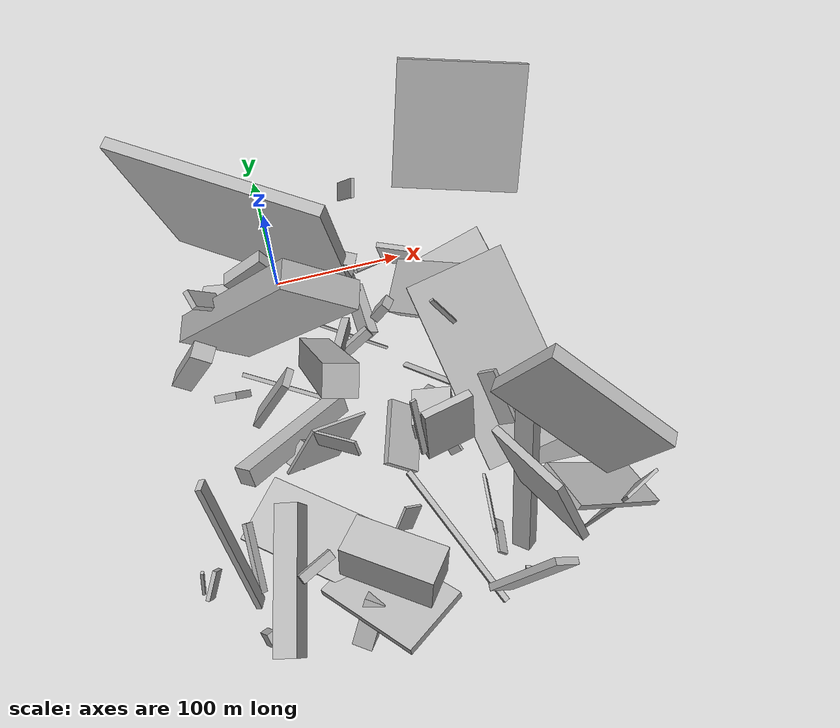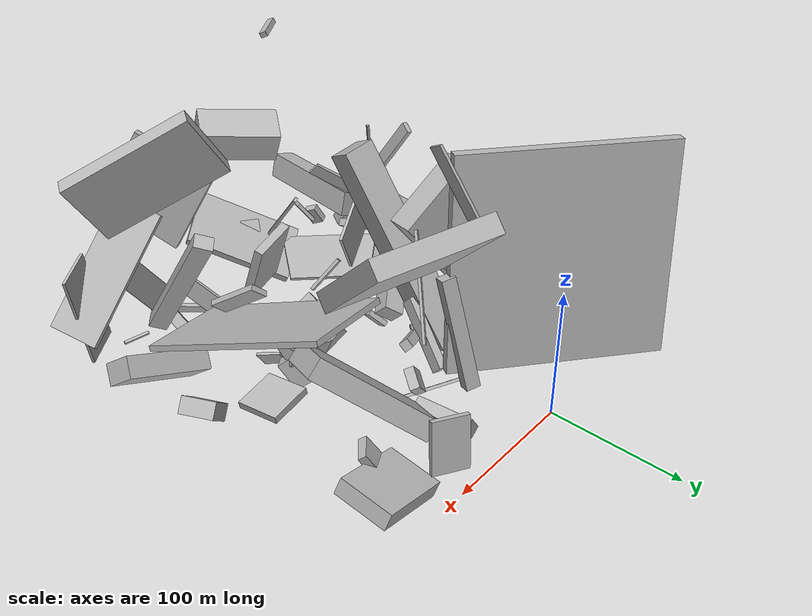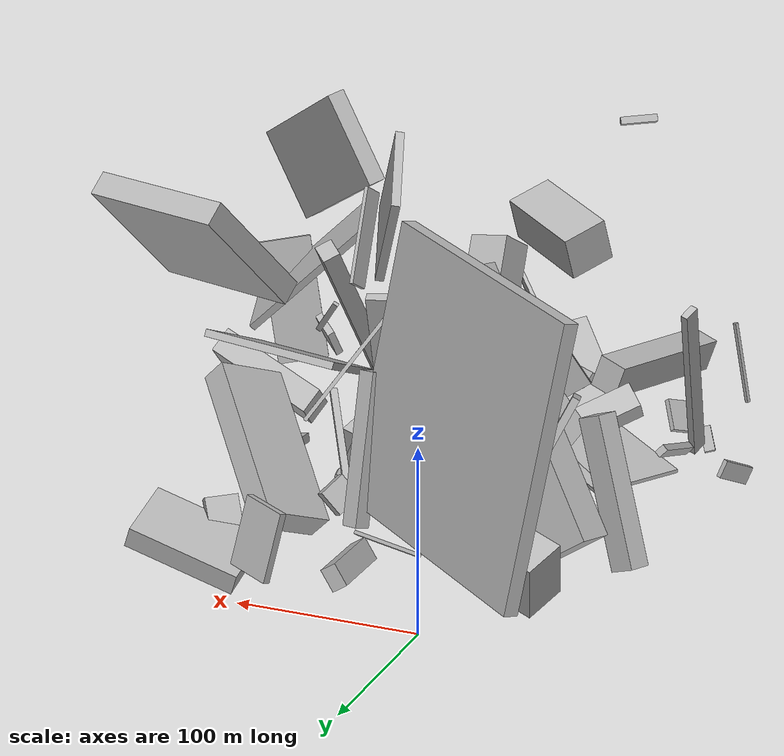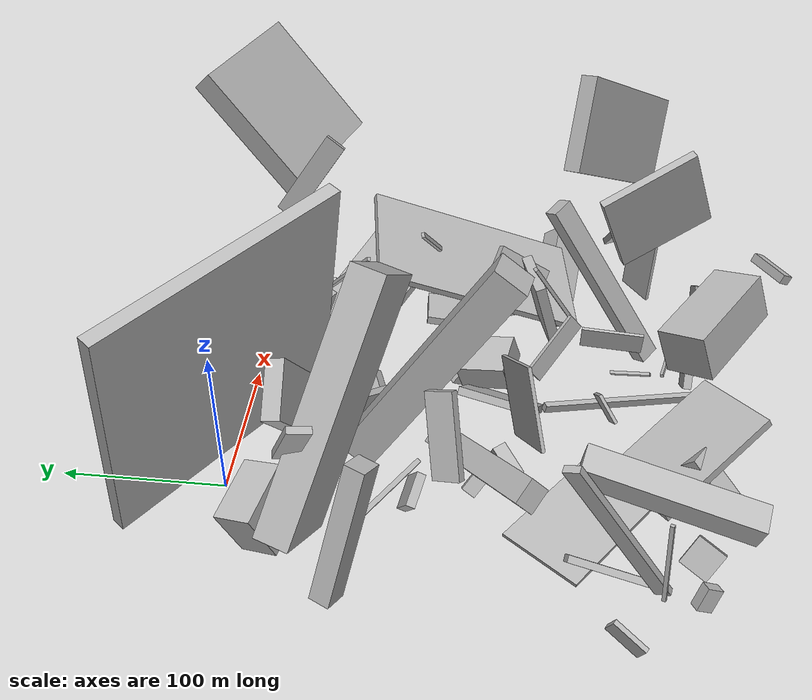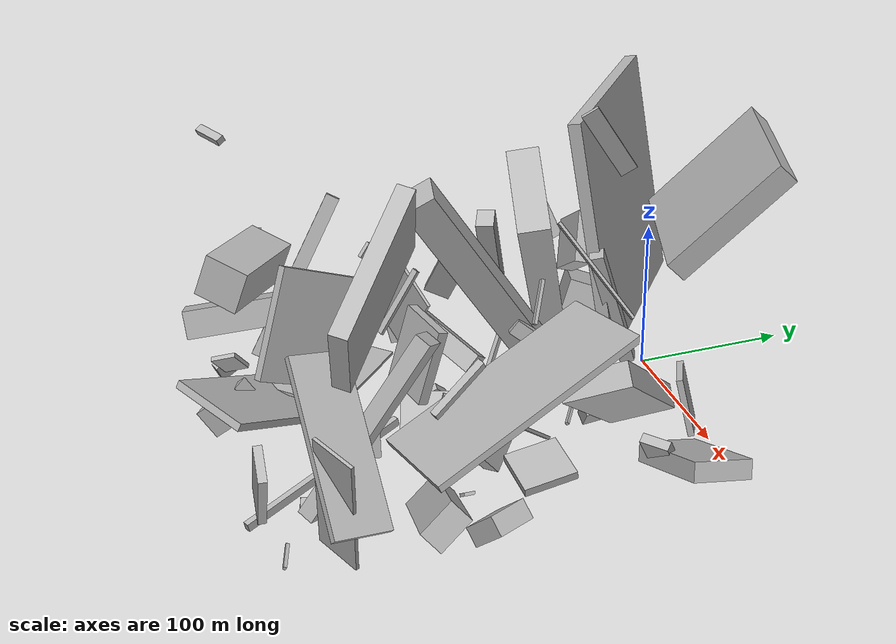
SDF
<sdf version="1.6">
 <world name="default">
  <model name="building_1">
   <static>0</static>
   <pose>14.167553418681498 -128.4385211129559 86.4717740284772 1.0269178768683063 -0.1665577892159041 2.955657467043656</pose>
   <link name="link">
    <gravity>0</gravity>
    <pose>0 0 10.5 0 0 0</pose>
    <collision name="collision"><geometry><box><size>22 150 21</size></box></geometry></collision>
    <visual name="visual">
     <cast_shadows>0</cast_shadows>
     <geometry><box><size>22 150 21</size></box></geometry>
     <material>
      <script>
       <uri>model://HANNAS_wall/materials/scripts</uri>
       <uri>model://HANNAS_wall/materials/textures</uri>
       <name>vrc/HANNAS_wall</name>
      </script>
     </material>
    </visual>
   </link>
  </model>
  <model name="building_5">
   <static>0</static>
   <pose>-17.961056952276753 -17.207184556817623 114.35984246697359 0.2839976143816802 -1.3792696738702126 -2.489850577921641</pose>
   <link name="link">
    <gravity>0</gravity>
    <pose>0 0 4.0 0 0 0</pose>
    <collision name="collision"><geometry><box><size>150 150 8</size></box></geometry></collision>
    <visual name="visual">
     <cast_shadows>0</cast_shadows>
     <geometry><box><size>150 150 8</size></box></geometry>
     <material>
      <script>
       <uri>model://HANNAS_wall/materials/scripts</uri>
       <uri>model://HANNAS_wall/materials/textures</uri>
       <name>vrc/HANNAS_wall</name>
      </script>
     </material>
    </visual>
   </link>
  </model>
  <model name="building_23">
   <static>0</static>
   <pose>115.91938954572889 -282.1856681553513 43.727112781264076 1.5741132704764333 -0.6018587251410455 3.0609200199020803</pose>
   <link name="link">
    <gravity>0</gravity>
    <pose>0 0 2.5 0 0 0</pose>
    <collision name="collision"><geometry><box><size>21 65 5</size></box></geometry></collision>
    <visual name="visual">
     <cast_shadows>0</cast_shadows>
     <geometry><box><size>21 65 5</size></box></geometry>
     <material>
      <script>
       <uri>model://HANNAS_wall/materials/scripts</uri>
       <uri>model://HANNAS_wall/materials/textures</uri>
       <name>vrc/HANNAS_wall</name>
      </script>
     </material>
    </visual>
   </link>
  </model>
  <model name="building_29">
   <static>0</static>
   <pose>161.65502159185326 -229.4057410338438 91.71723709342442 -1.2527995280689277 -0.765357492756513 -3.090254694429837</pose>
   <link name="link">
    <gravity>0</gravity>
    <pose>0 0 17.0 0 0 0</pose>
    <collision name="collision"><geometry><box><size>96 4 34</size></box></geometry></collision>
    <visual name="visual">
     <cast_shadows>0</cast_shadows>
     <geometry><box><size>96 4 34</size></box></geometry>
     <material>
      <script>
       <uri>model://HANNAS_wall/materials/scripts</uri>
       <uri>model://HANNAS_wall/materials/textures</uri>
       <name>vrc/HANNAS_wall</name>
      </script>
     </material>
    </visual>
   </link>
  </model>
  <model name="building_31">
   <static>0</static>
   <pose>-71.12173607689023 -217.81904068819807 67.67773377378983 1.0272851538388221 -1.0304022449760055 1.7855317427410022</pose>
   <link name="link">
    <gravity>0</gravity>
    <pose>0 0 2.0 0 0 0</pose>
    <collision name="collision"><geometry><box><size>117 9 4</size></box></geometry></collision>
    <visual name="visual">
     <cast_shadows>0</cast_shadows>
     <geometry><box><size>117 9 4</size></box></geometry>
     <material>
      <script>
       <uri>model://HANNAS_wall/materials/scripts</uri>
       <uri>model://HANNAS_wall/materials/textures</uri>
       <name>vrc/HANNAS_wall</name>
      </script>
     </material>
    </visual>
   </link>
  </model>
  <model name="building_34">
   <static>0</static>
   <pose>77.00392377610508 -237.8559256962605 17.65682385530406 1.4703786863304507 1.3690345414308702 1.8783712399257677</pose>
   <link name="link">
    <gravity>0</gravity>
    <pose>0 0 2.0 0 0 0</pose>
    <collision name="collision"><geometry><box><size>5 111 4</size></box></geometry></collision>
    <visual name="visual">
     <cast_shadows>0</cast_shadows>
     <geometry><box><size>5 111 4</size></box></geometry>
     <material>
      <script>
       <uri>model://HANNAS_wall/materials/scripts</uri>
       <uri>model://HANNAS_wall/materials/textures</uri>
       <name>vrc/HANNAS_wall</name>
      </script>
     </material>
    </visual>
   </link>
  </model>
  <model name="building_38">
   <static>0</static>
   <pose>122.61260703813824 -126.76806173273553 36.624197765709035 -1.6933191804896528 0.12758014650047617 -1.5352733530291771</pose>
   <link name="link">
    <gravity>0</gravity>
    <pose>0 0 15.5 0 0 0</pose>
    <collision name="collision"><geometry><box><size>32 5 31</size></box></geometry></collision>
    <visual name="visual">
     <cast_shadows>0</cast_shadows>
     <geometry><box><size>32 5 31</size></box></geometry>
     <material>
      <script>
       <uri>model://HANNAS_wall/materials/scripts</uri>
       <uri>model://HANNAS_wall/materials/textures</uri>
       <name>vrc/HANNAS_wall</name>
      </script>
     </material>
    </visual>
   </link>
  </model>
  <model name="building_43">
   <static>0</static>
   <pose>177.01295174001393 -244.9247773489519 148.10159401469008 1.0707601082096345 -0.2146266852913278 -2.161396804426114</pose>
   <link name="link">
    <gravity>0</gravity>
    <pose>0 0 45.5 0 0 0</pose>
    <collision name="collision"><geometry><box><size>10 53 91</size></box></geometry></collision>
    <visual name="visual">
     <cast_shadows>0</cast_shadows>
     <geometry><box><size>10 53 91</size></box></geometry>
     <material>
      <script>
       <uri>model://HANNAS_wall/materials/scripts</uri>
       <uri>model://HANNAS_wall/materials/textures</uri>
       <name>vrc/HANNAS_wall</name>
      </script>
     </material>
    </visual>
   </link>
  </model>
  <model name="building_44">
   <static>0</static>
   <pose>-59.731344857448974 -195.89416044890996 34.81261046220553 1.9930609223651006 -0.6924546302940384 -0.28740478855786455</pose>
   <link name="link">
    <gravity>0</gravity>
    <pose>0 0 24.0 0 0 0</pose>
    <collision name="collision"><geometry><box><size>4 6 48</size></box></geometry></collision>
    <visual name="visual">
     <cast_shadows>0</cast_shadows>
     <geometry><box><size>4 6 48</size></box></geometry>
     <material>
      <script>
       <uri>model://HANNAS_wall/materials/scripts</uri>
       <uri>model://HANNAS_wall/materials/textures</uri>
       <name>vrc/HANNAS_wall</name>
      </script>
     </material>
    </visual>
   </link>
  </model>
  <model name="building_45">
   <static>0</static>
   <pose>120.80255049454676 -169.68069466629393 86.25298110559275 2.2484199312301363 0.7157048544326549 2.7209666175936036</pose>
   <link name="link">
    <gravity>0</gravity>
    <pose>0 0 2.0 0 0 0</pose>
    <collision name="collision"><geometry><box><size>13 39 4</size></box></geometry></collision>
    <visual name="visual">
     <cast_shadows>0</cast_shadows>
     <geometry><box><size>13 39 4</size></box></geometry>
     <material>
      <script>
       <uri>model://HANNAS_wall/materials/scripts</uri>
       <uri>model://HANNAS_wall/materials/textures</uri>
       <name>vrc/HANNAS_wall</name>
      </script>
     </material>
    </visual>
   </link>
  </model>
  <model name="building_47">
   <static>0</static>
   <pose>21.404137272646036 -125.42198294280135 34.26859883090836 1.0875869183643108 -0.612547241246844 -0.6798426465221342</pose>
   <link name="link">
    <gravity>0</gravity>
    <pose>0 0 48.0 0 0 0</pose>
    <collision name="collision"><geometry><box><size>15 13 96</size></box></geometry></collision>
    <visual name="visual">
     <cast_shadows>0</cast_shadows>
     <geometry><box><size>15 13 96</size></box></geometry>
     <material>
      <script>
       <uri>model://HANNAS_wall/materials/scripts</uri>
       <uri>model://HANNAS_wall/materials/textures</uri>
       <name>vrc/HANNAS_wall</name>
      </script>
     </material>
    </visual>
   </link>
  </model>
  <model name="building_50">
   <static>0</static>
   <pose>130.08542213150906 -218.13000926275885 71.9219222392597 -1.105740864446861 0.3581091720272023 2.3885547113511634</pose>
   <link name="link">
    <gravity>0</gravity>
    <pose>0 0 5.0 0 0 0</pose>
    <collision name="collision"><geometry><box><size>13 124 10</size></box></geometry></collision>
    <visual name="visual">
     <cast_shadows>0</cast_shadows>
     <geometry><box><size>13 124 10</size></box></geometry>
     <material>
      <script>
       <uri>model://HANNAS_wall/materials/scripts</uri>
       <uri>model://HANNAS_wall/materials/textures</uri>
       <name>vrc/HANNAS_wall</name>
      </script>
     </material>
    </visual>
   </link>
  </model>
  <model name="building_52">
   <static>0</static>
   <pose>-18.060024421739353 -80.3688731226014 89.30021594419927 -1.3232069196400766 -0.9335774583299064 -0.4986220546433001</pose>
   <link name="link">
    <gravity>0</gravity>
    <pose>0 0 10.0 0 0 0</pose>
    <collision name="collision"><geometry><box><size>150 57 20</size></box></geometry></collision>
    <visual name="visual">
     <cast_shadows>0</cast_shadows>
     <geometry><box><size>150 57 20</size></box></geometry>
     <material>
      <script>
       <uri>model://HANNAS_wall/materials/scripts</uri>
       <uri>model://HANNAS_wall/materials/textures</uri>
       <name>vrc/HANNAS_wall</name>
      </script>
     </material>
    </visual>
   </link>
  </model>
  <model name="building_57">
   <static>0</static>
   <pose>80.62958397713695 -166.17266528502563 42.38449304388496 2.5591331132634325 -1.2462699287944417 1.9014290133863538</pose>
   <link name="link">
    <gravity>0</gravity>
    <pose>0 0 15.5 0 0 0</pose>
    <collision name="collision"><geometry><box><size>17 28 31</size></box></geometry></collision>
    <visual name="visual">
     <cast_shadows>0</cast_shadows>
     <geometry><box><size>17 28 31</size></box></geometry>
     <material>
      <script>
       <uri>model://HANNAS_wall/materials/scripts</uri>
       <uri>model://HANNAS_wall/materials/textures</uri>
       <name>vrc/HANNAS_wall</name>
      </script>
     </material>
    </visual>
   </link>
  </model>
  <model name="building_62">
   <static>0</static>
   <pose>-35.03556692489687 -246.25740978692903 56.19131936656756 -0.13443319802915094 0.2860597285468246 2.8700702685809136</pose>
   <link name="link">
    <gravity>0</gravity>
    <pose>0 0 9.0 0 0 0</pose>
    <collision name="collision"><geometry><box><size>16 95 18</size></box></geometry></collision>
    <visual name="visual">
     <cast_shadows>0</cast_shadows>
     <geometry><box><size>16 95 18</size></box></geometry>
     <material>
      <script>
       <uri>model://HANNAS_wall/materials/scripts</uri>
       <uri>model://HANNAS_wall/materials/textures</uri>
       <name>vrc/HANNAS_wall</name>
      </script>
     </material>
    </visual>
   </link>
  </model>
  <model name="building_64">
   <static>0</static>
   <pose>1.8953227690901562 -247.52507813845241 124.44477711188475 -1.424487490771508 -0.33004359681682727 -2.2520825917623406</pose>
   <link name="link">
    <gravity>0</gravity>
    <pose>0 0 28.5 0 0 0</pose>
    <collision name="collision"><geometry><box><size>26 25 57</size></box></geometry></collision>
    <visual name="visual">
     <cast_shadows>0</cast_shadows>
     <geometry><box><size>26 25 57</size></box></geometry>
     <material>
      <script>
       <uri>model://HANNAS_wall/materials/scripts</uri>
       <uri>model://HANNAS_wall/materials/textures</uri>
       <name>vrc/HANNAS_wall</name>
      </script>
     </material>
    </visual>
   </link>
  </model>
  <model name="building_65">
   <static>0</static>
   <pose>57.15799730744064 -24.94617569178102 10.798545434280392 -1.6849319292666494 1.0028521789742992 3.085202482956319</pose>
   <link name="link">
    <gravity>0</gravity>
    <pose>0 0 21.5 0 0 0</pose>
    <collision name="collision"><geometry><box><size>13 9 43</size></box></geometry></collision>
    <visual name="visual">
     <cast_shadows>0</cast_shadows>
     <geometry><box><size>13 9 43</size></box></geometry>
     <material>
      <script>
       <uri>model://HANNAS_wall/materials/scripts</uri>
       <uri>model://HANNAS_wall/materials/textures</uri>
       <name>vrc/HANNAS_wall</name>
      </script>
     </material>
    </visual>
   </link>
  </model>
  <model name="building_70">
   <static>0</static>
   <pose>129.81385448852578 -139.02095389712804 80.79505045384651 -0.3979820448608111 0.174179334488106 -3.0033013531506327</pose>
   <link name="link">
    <gravity>0</gravity>
    <pose>0 0 2.0 0 0 0</pose>
    <collision name="collision"><geometry><box><size>70 136 4</size></box></geometry></collision>
    <visual name="visual">
     <cast_shadows>0</cast_shadows>
     <geometry><box><size>70 136 4</size></box></geometry>
     <material>
      <script>
       <uri>model://HANNAS_wall/materials/scripts</uri>
       <uri>model://HANNAS_wall/materials/textures</uri>
       <name>vrc/HANNAS_wall</name>
      </script>
     </material>
    </visual>
   </link>
  </model>
  <model name="building_73">
   <static>0</static>
   <pose>82.71819072292082 -9.148102581305162 29.063035980696164 -1.2228439190487665 -1.3115070430664932 -2.370105602138723</pose>
   <link name="link">
    <gravity>0</gravity>
    <pose>0 0 13.5 0 0 0</pose>
    <collision name="collision"><geometry><box><size>38 4 27</size></box></geometry></collision>
    <visual name="visual">
     <cast_shadows>0</cast_shadows>
     <geometry><box><size>38 4 27</size></box></geometry>
     <material>
      <script>
       <uri>model://HANNAS_wall/materials/scripts</uri>
       <uri>model://HANNAS_wall/materials/textures</uri>
       <name>vrc/HANNAS_wall</name>
      </script>
     </material>
    </visual>
   </link>
  </model>
  <model name="building_97">
   <static>0</static>
   <pose>119.49602989349965 -69.47687045834843 51.64368323590075 -0.7133225038953244 -0.37021709690291155 1.0724137402412897</pose>
   <link name="link">
    <gravity>0</gravity>
    <pose>0 0 7.5 0 0 0</pose>
    <collision name="collision"><geometry><box><size>41 92 15</size></box></geometry></collision>
    <visual name="visual">
     <cast_shadows>0</cast_shadows>
     <geometry><box><size>41 92 15</size></box></geometry>
     <material>
      <script>
       <uri>model://HANNAS_wall/materials/scripts</uri>
       <uri>model://HANNAS_wall/materials/textures</uri>
       <name>vrc/HANNAS_wall</name>
      </script>
     </material>
    </visual>
   </link>
  </model>
  <model name="building_101">
   <static>0</static>
   <pose>110.26544183830518 -161.75202792948454 5.08935520013379 0.24784363054679467 -0.915103499573011 3.1006989509294884</pose>
   <link name="link">
    <gravity>0</gravity>
    <pose>0 0 3.0 0 0 0</pose>
    <collision name="collision"><geometry><box><size>2 7 6</size></box></geometry></collision>
    <visual name="visual">
     <cast_shadows>0</cast_shadows>
     <geometry><box><size>2 7 6</size></box></geometry>
     <material>
      <script>
       <uri>model://HANNAS_wall/materials/scripts</uri>
       <uri>model://HANNAS_wall/materials/textures</uri>
       <name>vrc/HANNAS_wall</name>
      </script>
     </material>
    </visual>
   </link>
  </model>
  <model name="building_103">
   <static>0</static>
   <pose>63.52720403962279 -196.3292584373714 94.25495521860088 0.18734190982263543 0.5608739334869479 2.020538471389854</pose>
   <link name="link">
    <gravity>0</gravity>
    <pose>0 0 21.0 0 0 0</pose>
    <collision name="collision"><geometry><box><size>2 4 42</size></box></geometry></collision>
    <visual name="visual">
     <cast_shadows>0</cast_shadows>
     <geometry><box><size>2 4 42</size></box></geometry>
     <material>
      <script>
       <uri>model://HANNAS_wall/materials/scripts</uri>
       <uri>model://HANNAS_wall/materials/textures</uri>
       <name>vrc/HANNAS_wall</name>
      </script>
     </material>
    </visual>
   </link>
  </model>
  <model name="building_110">
   <static>0</static>
   <pose>48.847438806661266 -38.33447090511542 165.54389236193856 0.5605089224928993 0.17738907856716776 -0.15434721032036114</pose>
   <link name="link">
    <gravity>0</gravity>
    <pose>0 0 25.0 0 0 0</pose>
    <collision name="collision"><geometry><box><size>2 11 50</size></box></geometry></collision>
    <visual name="visual">
     <cast_shadows>0</cast_shadows>
     <geometry><box><size>2 11 50</size></box></geometry>
     <material>
      <script>
       <uri>model://HANNAS_wall/materials/scripts</uri>
       <uri>model://HANNAS_wall/materials/textures</uri>
       <name>vrc/HANNAS_wall</name>
      </script>
     </material>
    </visual>
   </link>
  </model>
  <model name="building_115">
   <static>0</static>
   <pose>-9.781173106785609 -166.09393948258548 50.69153706652317 -1.8633844968681494 1.1043324696898589 0.3733287524097352</pose>
   <link name="link">
    <gravity>0</gravity>
    <pose>0 0 4.0 0 0 0</pose>
    <collision name="collision"><geometry><box><size>15 19 8</size></box></geometry></collision>
    <visual name="visual">
     <cast_shadows>0</cast_shadows>
     <geometry><box><size>15 19 8</size></box></geometry>
     <material>
      <script>
       <uri>model://HANNAS_wall/materials/scripts</uri>
       <uri>model://HANNAS_wall/materials/textures</uri>
       <name>vrc/HANNAS_wall</name>
      </script>
     </material>
    </visual>
   </link>
  </model>
  <model name="building_116">
   <static>0</static>
   <pose>47.81386399377662 -222.6595827481117 41.44815687825718 -2.076746631509082 0.6729662743604862 0.11644260208651876</pose>
   <link name="link">
    <gravity>0</gravity>
    <pose>0 0 1.0 0 0 0</pose>
    <collision name="collision"><geometry><box><size>15 19 2</size></box></geometry></collision>
    <visual name="visual">
     <cast_shadows>0</cast_shadows>
     <geometry><box><size>15 19 2</size></box></geometry>
     <material>
      <script>
       <uri>model://HANNAS_wall/materials/scripts</uri>
       <uri>model://HANNAS_wall/materials/textures</uri>
       <name>vrc/HANNAS_wall</name>
      </script>
     </material>
    </visual>
   </link>
  </model>
  <model name="building_119">
   <static>0</static>
   <pose>10.019935690044179 -148.3178848688403 10.245294159053218 0.8793163244729564 0.5164961837202158 -1.8876473924403856</pose>
   <link name="link">
    <gravity>0</gravity>
    <pose>0 0 2.0 0 0 0</pose>
    <collision name="collision"><geometry><box><size>9 16 4</size></box></geometry></collision>
    <visual name="visual">
     <cast_shadows>0</cast_shadows>
     <geometry><box><size>9 16 4</size></box></geometry>
     <material>
      <script>
       <uri>model://HANNAS_wall/materials/scripts</uri>
       <uri>model://HANNAS_wall/materials/textures</uri>
       <name>vrc/HANNAS_wall</name>
      </script>
     </material>
    </visual>
   </link>
  </model>
  <model name="building_122">
   <static>0</static>
   <pose>107.55910647905348 -244.96587669165785 15.126011191547947 0.2586320524099704 -0.7847145852723044 2.777259793280537</pose>
   <link name="link">
    <gravity>0</gravity>
    <pose>0 0 1.0 0 0 0</pose>
    <collision name="collision"><geometry><box><size>9 25 2</size></box></geometry></collision>
    <visual name="visual">
     <cast_shadows>0</cast_shadows>
     <geometry><box><size>9 25 2</size></box></geometry>
     <material>
      <script>
       <uri>model://HANNAS_wall/materials/scripts</uri>
       <uri>model://HANNAS_wall/materials/textures</uri>
       <name>vrc/HANNAS_wall</name>
      </script>
     </material>
    </visual>
   </link>
  </model>
  <model name="building_125">
   <static>0</static>
   <pose>-42.24622111235061 -25.51890194220666 47.01882761058073 -2.889832309832539 -0.30802827515902426 -1.9392061244995025</pose>
   <link name="link">
    <gravity>0</gravity>
    <pose>0 0 16.5 0 0 0</pose>
    <collision name="collision"><geometry><box><size>24 37 33</size></box></geometry></collision>
    <visual name="visual">
     <cast_shadows>0</cast_shadows>
     <geometry><box><size>24 37 33</size></box></geometry>
     <material>
      <script>
       <uri>model://HANNAS_wall/materials/scripts</uri>
       <uri>model://HANNAS_wall/materials/textures</uri>
       <name>vrc/HANNAS_wall</name>
      </script>
     </material>
    </visual>
   </link>
  </model>
  <model name="building_126">
   <static>0</static>
   <pose>4.373321260572592 -168.85388212009872 81.44678441381885 1.4744308676852176 -1.0089506405294706 0.44357464306674244</pose>
   <link name="link">
    <gravity>0</gravity>
    <pose>0 0 1.0 0 0 0</pose>
    <collision name="collision"><geometry><box><size>46 45 2</size></box></geometry></collision>
    <visual name="visual">
     <cast_shadows>0</cast_shadows>
     <geometry><box><size>46 45 2</size></box></geometry>
     <material>
      <script>
       <uri>model://HANNAS_wall/materials/scripts</uri>
       <uri>model://HANNAS_wall/materials/textures</uri>
       <name>vrc/HANNAS_wall</name>
      </script>
     </material>
    </visual>
   </link>
  </model>
  <model name="building_128">
   <static>0</static>
   <pose>72.68055743228487 -65.24074969894232 38.47545535695291 0.8924066910027164 0.8676096654303622 -2.9302363980007295</pose>
   <link name="link">
    <gravity>0</gravity>
    <pose>0 0 3.5 0 0 0</pose>
    <collision name="collision"><geometry><box><size>15 15 7</size></box></geometry></collision>
    <visual name="visual">
     <cast_shadows>0</cast_shadows>
     <geometry><box><size>15 15 7</size></box></geometry>
     <material>
      <script>
       <uri>model://HANNAS_wall/materials/scripts</uri>
       <uri>model://HANNAS_wall/materials/textures</uri>
       <name>vrc/HANNAS_wall</name>
      </script>
     </material>
    </visual>
   </link>
  </model>
  <model name="building_129">
   <static>0</static>
   <pose>10.705864076729373 -272.60599460167856 19.58937709222291 0.6890668347707565 -0.019066026301212347 -0.6016128222328235</pose>
   <link name="link">
    <gravity>0</gravity>
    <pose>0 0 9.5 0 0 0</pose>
    <collision name="collision"><geometry><box><size>14 35 19</size></box></geometry></collision>
    <visual name="visual">
     <cast_shadows>0</cast_shadows>
     <geometry><box><size>14 35 19</size></box></geometry>
     <material>
      <script>
       <uri>model://HANNAS_wall/materials/scripts</uri>
       <uri>model://HANNAS_wall/materials/textures</uri>
       <name>vrc/HANNAS_wall</name>
      </script>
     </material>
    </visual>
   </link>
  </model>
  <model name="building_130">
   <static>0</static>
   <pose>85.05064321262935 -187.0247645918384 67.11317137931107 0.2983537640296747 -0.0426229100619017 -2.9172596261482147</pose>
   <link name="link">
    <gravity>0</gravity>
    <pose>0 0 22.5 0 0 0</pose>
    <collision name="collision"><geometry><box><size>35 6 45</size></box></geometry></collision>
    <visual name="visual">
     <cast_shadows>0</cast_shadows>
     <geometry><box><size>35 6 45</size></box></geometry>
     <material>
      <script>
       <uri>model://HANNAS_wall/materials/scripts</uri>
       <uri>model://HANNAS_wall/materials/textures</uri>
       <name>vrc/HANNAS_wall</name>
      </script>
     </material>
    </visual>
   </link>
  </model>
  <model name="building_132">
   <static>0</static>
   <pose>-4.375152923005558 -189.4994323783454 21.64928012932549 1.5036819050438484 -0.07462860595424295 -0.6933822931232458</pose>
   <link name="link">
    <gravity>0</gravity>
    <pose>0 0 25.0 0 0 0</pose>
    <collision name="collision"><geometry><box><size>80 2 50</size></box></geometry></collision>
    <visual name="visual">
     <cast_shadows>0</cast_shadows>
     <geometry><box><size>80 2 50</size></box></geometry>
     <material>
      <script>
       <uri>model://HANNAS_wall/materials/scripts</uri>
       <uri>model://HANNAS_wall/materials/textures</uri>
       <name>vrc/HANNAS_wall</name>
      </script>
     </material>
    </visual>
   </link>
  </model>
  <model name="building_140">
   <static>0</static>
   <pose>-16.559999900975736 -272.1518448893537 193.19442022645885 -0.15707066350621 -1.1189735837120247 -0.9590937302501035</pose>
   <link name="link">
    <gravity>0</gravity>
    <pose>0 0 2.5 0 0 0</pose>
    <collision name="collision"><geometry><box><size>4 20 5</size></box></geometry></collision>
    <visual name="visual">
     <cast_shadows>0</cast_shadows>
     <geometry><box><size>4 20 5</size></box></geometry>
     <material>
      <script>
       <uri>model://HANNAS_wall/materials/scripts</uri>
       <uri>model://HANNAS_wall/materials/textures</uri>
       <name>vrc/HANNAS_wall</name>
      </script>
     </material>
    </visual>
   </link>
  </model>
  <model name="building_142">
   <static>0</static>
   <pose>122.16402379848726 -48.57202495031345 157.164798161844 -0.010572409489074952 -0.7724042514336138 -1.8685820703108706</pose>
   <link name="link">
    <gravity>0</gravity>
    <pose>0 0 39.0 0 0 0</pose>
    <collision name="collision"><geometry><box><size>13 80 78</size></box></geometry></collision>
    <visual name="visual">
     <cast_shadows>0</cast_shadows>
     <geometry><box><size>13 80 78</size></box></geometry>
     <material>
      <script>
       <uri>model://HANNAS_wall/materials/scripts</uri>
       <uri>model://HANNAS_wall/materials/textures</uri>
       <name>vrc/HANNAS_wall</name>
      </script>
     </material>
    </visual>
   </link>
  </model>
  <model name="building_143">
   <static>0</static>
   <pose>-14.69118776835621 -50.238983285317104 92.75492789569418 2.0100115186394407 -0.9020637276563126 2.6543159595489936</pose>
   <link name="link">
    <gravity>0</gravity>
    <pose>0 0 5.5 0 0 0</pose>
    <collision name="collision"><geometry><box><size>33 33 11</size></box></geometry></collision>
    <visual name="visual">
     <cast_shadows>0</cast_shadows>
     <geometry><box><size>33 33 11</size></box></geometry>
     <material>
      <script>
       <uri>model://HANNAS_wall/materials/scripts</uri>
       <uri>model://HANNAS_wall/materials/textures</uri>
       <name>vrc/HANNAS_wall</name>
      </script>
     </material>
    </visual>
   </link>
  </model>
  <model name="building_147">
   <static>0</static>
   <pose>43.324642642085685 -253.01441625752173 33.02138932769767 1.1198997370389099 1.0795343426225086 -1.388297498376658</pose>
   <link name="link">
    <gravity>0</gravity>
    <pose>0 0 25.5 0 0 0</pose>
    <collision name="collision"><geometry><box><size>5 80 51</size></box></geometry></collision>
    <visual name="visual">
     <cast_shadows>0</cast_shadows>
     <geometry><box><size>5 80 51</size></box></geometry>
     <material>
      <script>
       <uri>model://HANNAS_wall/materials/scripts</uri>
       <uri>model://HANNAS_wall/materials/textures</uri>
       <name>vrc/HANNAS_wall</name>
      </script>
     </material>
    </visual>
   </link>
  </model>
  <model name="building_157">
   <static>0</static>
   <pose>-49.56474180587382 -263.96182455758924 19.496470156872746 -0.630873957657355 0.30891626651785625 -2.1104571484230346</pose>
   <link name="link">
    <gravity>0</gravity>
    <pose>0 0 9.0 0 0 0</pose>
    <collision name="collision"><geometry><box><size>17 3 18</size></box></geometry></collision>
    <visual name="visual">
     <cast_shadows>0</cast_shadows>
     <geometry><box><size>17 3 18</size></box></geometry>
     <material>
      <script>
       <uri>model://HANNAS_wall/materials/scripts</uri>
       <uri>model://HANNAS_wall/materials/textures</uri>
       <name>vrc/HANNAS_wall</name>
      </script>
     </material>
    </visual>
   </link>
  </model>
  <model name="building_159">
   <static>0</static>
   <pose>43.64493042689083 -90.0887273010729 41.72870876645241 -0.4728533638553492 0.7049652155666756 1.648760014752552</pose>
   <link name="link">
    <gravity>0</gravity>
    <pose>0 0 3.5 0 0 0</pose>
    <collision name="collision"><geometry><box><size>7 31 7</size></box></geometry></collision>
    <visual name="visual">
     <cast_shadows>0</cast_shadows>
     <geometry><box><size>7 31 7</size></box></geometry>
     <material>
      <script>
       <uri>model://HANNAS_wall/materials/scripts</uri>
       <uri>model://HANNAS_wall/materials/textures</uri>
       <name>vrc/HANNAS_wall</name>
      </script>
     </material>
    </visual>
   </link>
  </model>
  <model name="building_163">
   <static>0</static>
   <pose>166.4449339369409 -25.72837216979182 27.064097836720446 1.9277613593431866 -0.2062428689051669 -1.5173345525963733</pose>
   <link name="link">
    <gravity>0</gravity>
    <pose>0 0 30.5 0 0 0</pose>
    <collision name="collision"><geometry><box><size>39 12 61</size></box></geometry></collision>
    <visual name="visual">
     <cast_shadows>0</cast_shadows>
     <geometry><box><size>39 12 61</size></box></geometry>
     <material>
      <script>
       <uri>model://HANNAS_wall/materials/scripts</uri>
       <uri>model://HANNAS_wall/materials/textures</uri>
       <name>vrc/HANNAS_wall</name>
      </script>
     </material>
    </visual>
   </link>
  </model>
  <model name="building_165">
   <static>0</static>
   <pose>97.35269589421034 -113.57995951620397 116.55331289224192 -0.949046038701499 -0.4192957375601547 -1.6547642560986484</pose>
   <link name="link">
    <gravity>0</gravity>
    <pose>0 0 1.5 0 0 0</pose>
    <collision name="collision"><geometry><box><size>2 26 3</size></box></geometry></collision>
    <visual name="visual">
     <cast_shadows>0</cast_shadows>
     <geometry><box><size>2 26 3</size></box></geometry>
     <material>
      <script>
       <uri>model://HANNAS_wall/materials/scripts</uri>
       <uri>model://HANNAS_wall/materials/textures</uri>
       <name>vrc/HANNAS_wall</name>
      </script>
     </material>
    </visual>
   </link>
  </model>
  <model name="building_166">
   <static>0</static>
   <pose>70.72882124397057 -164.1459274769253 21.718592415664617 -0.020035347461168272 -0.9374806879950646 -0.30649644186172464</pose>
   <link name="link">
    <gravity>0</gravity>
    <pose>0 0 13.5 0 0 0</pose>
    <collision name="collision"><geometry><box><size>5 48 27</size></box></geometry></collision>
    <visual name="visual">
     <cast_shadows>0</cast_shadows>
     <geometry><box><size>5 48 27</size></box></geometry>
     <material>
      <script>
       <uri>model://HANNAS_wall/materials/scripts</uri>
       <uri>model://HANNAS_wall/materials/textures</uri>
       <name>vrc/HANNAS_wall</name>
      </script>
     </material>
    </visual>
   </link>
  </model>
  <model name="building_169">
   <static>0</static>
   <pose>172.55062365645608 -205.04198574380862 37.37490189984911 -0.56027849056522 0.7622965521034086 1.0144090369824657</pose>
   <link name="link">
    <gravity>0</gravity>
    <pose>0 0 11.5 0 0 0</pose>
    <collision name="collision"><geometry><box><size>15 65 23</size></box></geometry></collision>
    <visual name="visual">
     <cast_shadows>0</cast_shadows>
     <geometry><box><size>15 65 23</size></box></geometry>
     <material>
      <script>
       <uri>model://HANNAS_wall/materials/scripts</uri>
       <uri>model://HANNAS_wall/materials/textures</uri>
       <name>vrc/HANNAS_wall</name>
      </script>
     </material>
    </visual>
   </link>
  </model>
  <model name="building_175">
   <static>0</static>
   <pose>10.97329331775521 -186.4292526905023 112.72047898596027 -0.350699094298936 -0.5971785880222746 -0.7404459610586595</pose>
   <link name="link">
    <gravity>0</gravity>
    <pose>0 0 5.0 0 0 0</pose>
    <collision name="collision"><geometry><box><size>36 2 10</size></box></geometry></collision>
    <visual name="visual">
     <cast_shadows>0</cast_shadows>
     <geometry><box><size>36 2 10</size></box></geometry>
     <material>
      <script>
       <uri>model://HANNAS_wall/materials/scripts</uri>
       <uri>model://HANNAS_wall/materials/textures</uri>
       <name>vrc/HANNAS_wall</name>
      </script>
     </material>
    </visual>
   </link>
  </model>
  <model name="building_176">
   <static>0</static>
   <pose>45.78378806343043 -66.7667851869249 13.952196068599767 0.15755649042502604 -0.6735636363103354 0.9157287932027801</pose>
   <link name="link">
    <gravity>0</gravity>
    <pose>0 0 1.0 0 0 0</pose>
    <collision name="collision"><geometry><box><size>2 58 2</size></box></geometry></collision>
    <visual name="visual">
     <cast_shadows>0</cast_shadows>
     <geometry><box><size>2 58 2</size></box></geometry>
     <material>
      <script>
       <uri>model://HANNAS_wall/materials/scripts</uri>
       <uri>model://HANNAS_wall/materials/textures</uri>
       <name>vrc/HANNAS_wall</name>
      </script>
     </material>
    </visual>
   </link>
  </model>
  <model name="building_180">
   <static>0</static>
   <pose>100.32849838534096 -148.1503091609959 17.742818438211543 0.3052383364327238 -0.9045452121308728 -1.2176871906521622</pose>
   <link name="link">
    <gravity>0</gravity>
    <pose>0 0 12.0 0 0 0</pose>
    <collision name="collision"><geometry><box><size>22 11 24</size></box></geometry></collision>
    <visual name="visual">
     <cast_shadows>0</cast_shadows>
     <geometry><box><size>22 11 24</size></box></geometry>
     <material>
      <script>
       <uri>model://HANNAS_wall/materials/scripts</uri>
       <uri>model://HANNAS_wall/materials/textures</uri>
       <name>vrc/HANNAS_wall</name>
      </script>
     </material>
    </visual>
   </link>
  </model>
  <model name="building_184">
   <static>0</static>
   <pose>50.56406280034822 -41.637897646733016 76.65416922651956 2.6986569055032534 -1.271450526389776 -1.5700467204437385</pose>
   <link name="link">
    <gravity>0</gravity>
    <pose>0 0 4.5 0 0 0</pose>
    <collision name="collision"><geometry><box><size>80 10 9</size></box></geometry></collision>
    <visual name="visual">
     <cast_shadows>0</cast_shadows>
     <geometry><box><size>80 10 9</size></box></geometry>
     <material>
      <script>
       <uri>model://HANNAS_wall/materials/scripts</uri>
       <uri>model://HANNAS_wall/materials/textures</uri>
       <name>vrc/HANNAS_wall</name>
      </script>
     </material>
    </visual>
   </link>
  </model>
  <model name="building_186">
   <static>0</static>
   <pose>101.4921394907106 -227.9402976547 47.77825599018368 1.363336042683125 0.013445175498253602 1.4576548771131772</pose>
   <link name="link">
    <gravity>0</gravity>
    <pose>0 0 1.0 0 0 0</pose>
    <collision name="collision"><geometry><box><size>38 16 2</size></box></geometry></collision>
    <visual name="visual">
     <cast_shadows>0</cast_shadows>
     <geometry><box><size>38 16 2</size></box></geometry>
     <material>
      <script>
       <uri>model://HANNAS_wall/materials/scripts</uri>
       <uri>model://HANNAS_wall/materials/textures</uri>
       <name>vrc/HANNAS_wall</name>
      </script>
     </material>
    </visual>
   </link>
  </model>
  <model name="building_202">
   <static>0</static>
   <pose>-86.91462862448529 -218.61281861952745 20.28913380331911 2.8913157932418048 1.12896500383264 0.7817433573679604</pose>
   <link name="link">
    <gravity>0</gravity>
    <pose>0 0 10.5 0 0 0</pose>
    <collision name="collision"><geometry><box><size>10 3 21</size></box></geometry></collision>
    <visual name="visual">
     <cast_shadows>0</cast_shadows>
     <geometry><box><size>10 3 21</size></box></geometry>
     <material>
      <script>
       <uri>model://HANNAS_wall/materials/scripts</uri>
       <uri>model://HANNAS_wall/materials/textures</uri>
       <name>vrc/HANNAS_wall</name>
      </script>
     </material>
    </visual>
   </link>
  </model>
  <model name="building_203">
   <static>0</static>
   <pose>-62.62207277141555 -266.60818396729854 16.29701635661945 2.027955013761313 0.2263405101572718 0.38065827616473785</pose>
   <link name="link">
    <gravity>0</gravity>
    <pose>0 0 5.0 0 0 0</pose>
    <collision name="collision"><geometry><box><size>6 14 10</size></box></geometry></collision>
    <visual name="visual">
     <cast_shadows>0</cast_shadows>
     <geometry><box><size>6 14 10</size></box></geometry>
     <material>
      <script>
       <uri>model://HANNAS_wall/materials/scripts</uri>
       <uri>model://HANNAS_wall/materials/textures</uri>
       <name>vrc/HANNAS_wall</name>
      </script>
     </material>
    </visual>
   </link>
  </model>
  <model name="building_206">
   <static>0</static>
   <pose>42.295729302818565 -63.58007213534866 30.38942823299798 -0.9165466147155683 0.12481847395806396 2.8670363668465435</pose>
   <link name="link">
    <gravity>0</gravity>
    <pose>0 0 26.0 0 0 0</pose>
    <collision name="collision"><geometry><box><size>6 10 52</size></box></geometry></collision>
    <visual name="visual">
     <cast_shadows>0</cast_shadows>
     <geometry><box><size>6 10 52</size></box></geometry>
     <material>
      <script>
       <uri>model://HANNAS_wall/materials/scripts</uri>
       <uri>model://HANNAS_wall/materials/textures</uri>
       <name>vrc/HANNAS_wall</name>
      </script>
     </material>
    </visual>
   </link>
  </model>
  <model name="building_209">
   <static>0</static>
   <pose>97.10262703888897 -177.83385769180143 14.09927980843731 -0.9266641840798455 -1.0281671143016378 -0.23682073905082549</pose>
   <link name="link">
    <gravity>0</gravity>
    <pose>0 0 9.5 0 0 0</pose>
    <collision name="collision"><geometry><box><size>13 2 19</size></box></geometry></collision>
    <visual name="visual">
     <cast_shadows>0</cast_shadows>
     <geometry><box><size>13 2 19</size></box></geometry>
     <material>
      <script>
       <uri>model://HANNAS_wall/materials/scripts</uri>
       <uri>model://HANNAS_wall/materials/textures</uri>
       <name>vrc/HANNAS_wall</name>
      </script>
     </material>
    </visual>
   </link>
  </model>
  <model name="building_211">
   <static>0</static>
   <pose>96.30101815698453 -125.65387315389344 35.242739813629335 -0.11993210598569495 0.6860777776054597 2.139518185798836</pose>
   <link name="link">
    <gravity>0</gravity>
    <pose>0 0 1.0 0 0 0</pose>
    <collision name="collision"><geometry><box><size>80 4 2</size></box></geometry></collision>
    <visual name="visual">
     <cast_shadows>0</cast_shadows>
     <geometry><box><size>80 4 2</size></box></geometry>
     <material>
      <script>
       <uri>model://HANNAS_wall/materials/scripts</uri>
       <uri>model://HANNAS_wall/materials/textures</uri>
       <name>vrc/HANNAS_wall</name>
      </script>
     </material>
    </visual>
   </link>
  </model>
  <model name="building_216">
   <static>0</static>
   <pose>64.52604059069273 -64.5020178196801 111.46437818810864 0.8975999968146741 -0.33903448182507184 1.9781523666452447</pose>
   <link name="link">
    <gravity>0</gravity>
    <pose>0 0 1.0 0 0 0</pose>
    <collision name="collision"><geometry><box><size>2 72 2</size></box></geometry></collision>
    <visual name="visual">
     <cast_shadows>0</cast_shadows>
     <geometry><box><size>2 72 2</size></box></geometry>
     <material>
      <script>
       <uri>model://HANNAS_wall/materials/scripts</uri>
       <uri>model://HANNAS_wall/materials/textures</uri>
       <name>vrc/HANNAS_wall</name>
      </script>
     </material>
    </visual>
   </link>
  </model>
  <model name="building_218">
   <static>0</static>
   <pose>-41.64127775883388 -116.76015699028613 68.56648069942905 -2.115637686567837 -0.39698107955451967 1.5162100025530263</pose>
   <link name="link">
    <gravity>0</gravity>
    <pose>0 0 9.0 0 0 0</pose>
    <collision name="collision"><geometry><box><size>5 18 18</size></box></geometry></collision>
    <visual name="visual">
     <cast_shadows>0</cast_shadows>
     <geometry><box><size>5 18 18</size></box></geometry>
     <material>
      <script>
       <uri>model://HANNAS_wall/materials/scripts</uri>
       <uri>model://HANNAS_wall/materials/textures</uri>
       <name>vrc/HANNAS_wall</name>
      </script>
     </material>
    </visual>
   </link>
  </model>
  <model name="building_221">
   <static>0</static>
   <pose>-14.246555661617913 -97.56807776625892 25.458130952565185 2.919704005221222 -1.16312882696523 -1.8893034833324114</pose>
   <link name="link">
    <gravity>0</gravity>
    <pose>0 0 1.5 0 0 0</pose>
    <collision name="collision"><geometry><box><size>3 61 3</size></box></geometry></collision>
    <visual name="visual">
     <cast_shadows>0</cast_shadows>
     <geometry><box><size>3 61 3</size></box></geometry>
     <material>
      <script>
       <uri>model://HANNAS_wall/materials/scripts</uri>
       <uri>model://HANNAS_wall/materials/textures</uri>
       <name>vrc/HANNAS_wall</name>
      </script>
     </material>
    </visual>
   </link>
  </model>
  <model name="building_224">
   <static>0</static>
   <pose>122.75731152931918 -54.041295110662155 22.18249202786798 1.5929250396238641 0.9795718783938275 2.2854070827200554</pose>
   <link name="link">
    <gravity>0</gravity>
    <pose>0 0 9.0 0 0 0</pose>
    <collision name="collision"><geometry><box><size>25 6 18</size></box></geometry></collision>
    <visual name="visual">
     <cast_shadows>0</cast_shadows>
     <geometry><box><size>25 6 18</size></box></geometry>
     <material>
      <script>
       <uri>model://HANNAS_wall/materials/scripts</uri>
       <uri>model://HANNAS_wall/materials/textures</uri>
       <name>vrc/HANNAS_wall</name>
      </script>
     </material>
    </visual>
   </link>
  </model>
  <model name="building_230">
   <static>0</static>
   <pose>-91.01736186441876 -237.1272086976177 75.4202134233279 1.6866481483097735 0.12707665818680886 1.1156009862211</pose>
   <link name="link">
    <gravity>0</gravity>
    <pose>0 0 1.0 0 0 0</pose>
    <collision name="collision"><geometry><box><size>2 46 2</size></box></geometry></collision>
    <visual name="visual">
     <cast_shadows>0</cast_shadows>
     <geometry><box><size>2 46 2</size></box></geometry>
     <material>
      <script>
       <uri>model://HANNAS_wall/materials/scripts</uri>
       <uri>model://HANNAS_wall/materials/textures</uri>
       <name>vrc/HANNAS_wall</name>
      </script>
     </material>
    </visual>
   </link>
  </model>
  <model name="building_231">
   <static>0</static>
   <pose>-44.79648635625773 -48.736930673834905 79.63149497685589 0.23404994384347025 -0.4652357418917877 0.1839078877104611</pose>
   <link name="link">
    <gravity>0</gravity>
    <pose>0 0 20.0 0 0 0</pose>
    <collision name="collision"><geometry><box><size>4 13 40</size></box></geometry></collision>
    <visual name="visual">
     <cast_shadows>0</cast_shadows>
     <geometry><box><size>4 13 40</size></box></geometry>
     <material>
      <script>
       <uri>model://HANNAS_wall/materials/scripts</uri>
       <uri>model://HANNAS_wall/materials/textures</uri>
       <name>vrc/HANNAS_wall</name>
      </script>
     </material>
    </visual>
   </link>
  </model>
  <model name="building_235">
   <static>0</static>
   <pose>181.2665867097512 -252.72794788415843 69.67852687145486 -0.9372127585368532 -1.4051813728975453 -0.17700306127128906</pose>
   <link name="link">
    <gravity>0</gravity>
    <pose>0 0 1.0 0 0 0</pose>
    <collision name="collision"><geometry><box><size>72 29 2</size></box></geometry></collision>
    <visual name="visual">
     <cast_shadows>0</cast_shadows>
     <geometry><box><size>72 29 2</size></box></geometry>
     <material>
      <script>
       <uri>model://HANNAS_wall/materials/scripts</uri>
       <uri>model://HANNAS_wall/materials/textures</uri>
       <name>vrc/HANNAS_wall</name>
      </script>
     </material>
    </visual>
   </link>
  </model>
  <model name="building_249">
   <static>0</static>
   <pose>127.60827799717497 -253.84371020513532 109.60060249266705 0.45855453849240857 0.16081349995830646 -2.7104379101408322</pose>
   <link name="link">
    <gravity>0</gravity>
    <pose>0 0 29.5 0 0 0</pose>
    <collision name="collision"><geometry><box><size>5 59 59</size></box></geometry></collision>
    <visual name="visual">
     <cast_shadows>0</cast_shadows>
     <geometry><box><size>5 59 59</size></box></geometry>
     <material>
      <script>
       <uri>model://HANNAS_wall/materials/scripts</uri>
       <uri>model://HANNAS_wall/materials/textures</uri>
       <name>vrc/HANNAS_wall</name>
      </script>
     </material>
    </visual>
   </link>
  </model>
  <model name="building_253">
   <static>0</static>
   <pose>172.76227382740333 -171.5982905425344 26.012980822414942 1.5973679954968822 -0.8242537753487275 -2.7229797241663714</pose>
   <link name="link">
    <gravity>0</gravity>
    <pose>0 0 12.0 0 0 0</pose>
    <collision name="collision"><geometry><box><size>12 26 24</size></box></geometry></collision>
    <visual name="visual">
     <cast_shadows>0</cast_shadows>
     <geometry><box><size>12 26 24</size></box></geometry>
     <material>
      <script>
       <uri>model://HANNAS_wall/materials/scripts</uri>
       <uri>model://HANNAS_wall/materials/textures</uri>
       <name>vrc/HANNAS_wall</name>
      </script>
     </material>
    </visual>
   </link>
  </model>
  <model name="building_256">
   <static>0</static>
   <pose>138.97938881531405 -273.76480162430767 3.358076854571577 -1.493369444625478 0.41352439514216627 1.311101609451508</pose>
   <link name="link">
    <gravity>0</gravity>
    <pose>0 0 9.5 0 0 0</pose>
    <collision name="collision"><geometry><box><size>2 2 19</size></box></geometry></collision>
    <visual name="visual">
     <cast_shadows>0</cast_shadows>
     <geometry><box><size>2 2 19</size></box></geometry>
     <material>
      <script>
       <uri>model://HANNAS_wall/materials/scripts</uri>
       <uri>model://HANNAS_wall/materials/textures</uri>
       <name>vrc/HANNAS_wall</name>
      </script>
     </material>
    </visual>
   </link>
  </model>
  <model name="building_258">
   <static>0</static>
   <pose>-24.266567921788763 -127.98909690276551 80.17961865679433 2.3865050185757646 -0.9816784620002532 0.26651273059381386</pose>
   <link name="link">
    <gravity>0</gravity>
    <pose>0 0 2.5 0 0 0</pose>
    <collision name="collision"><geometry><box><size>48 17 5</size></box></geometry></collision>
    <visual name="visual">
     <cast_shadows>0</cast_shadows>
     <geometry><box><size>48 17 5</size></box></geometry>
     <material>
      <script>
       <uri>model://HANNAS_wall/materials/scripts</uri>
       <uri>model://HANNAS_wall/materials/textures</uri>
       <name>vrc/HANNAS_wall</name>
      </script>
     </material>
    </visual>
   </link>
  </model>
  <model name="building_259">
   <static>0</static>
   <pose>-75.49058076129865 -87.82984245900707 56.57756239119441 -1.418365994394973 -1.1833075453571462 -0.5874668627508112</pose>
   <link name="link">
    <gravity>0</gravity>
    <pose>0 0 6.0 0 0 0</pose>
    <collision name="collision"><geometry><box><size>80 15 12</size></box></geometry></collision>
    <visual name="visual">
     <cast_shadows>0</cast_shadows>
     <geometry><box><size>80 15 12</size></box></geometry>
     <material>
      <script>
       <uri>model://HANNAS_wall/materials/scripts</uri>
       <uri>model://HANNAS_wall/materials/textures</uri>
       <name>vrc/HANNAS_wall</name>
      </script>
     </material>
    </visual>
   </link>
  </model>
 </world>
</sdf>
